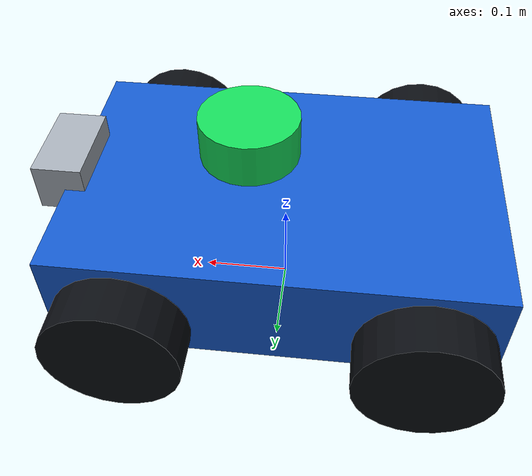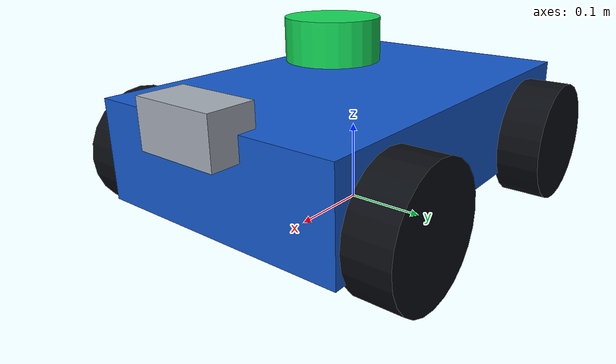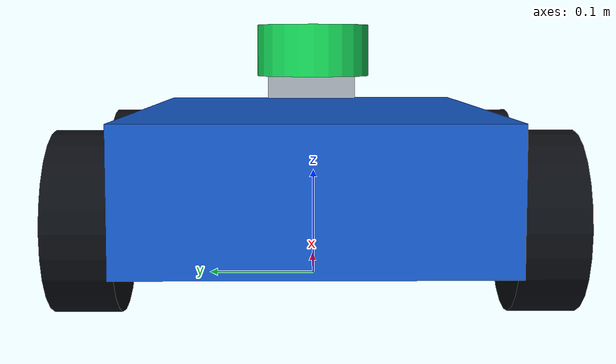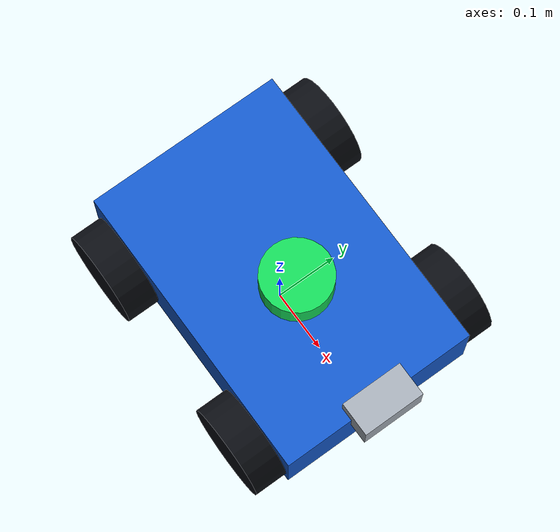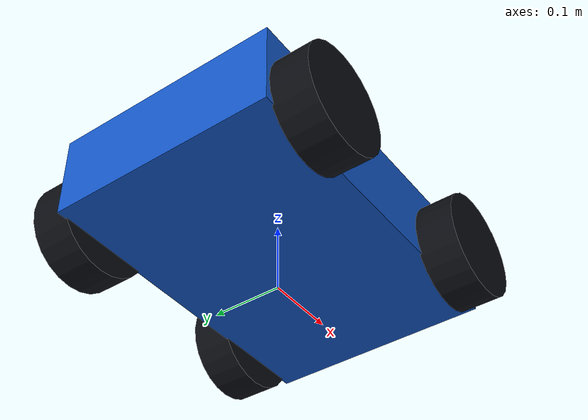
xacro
<?xml version="1.0"?>
<robot name="show_car" xmlns:xacro="http://www.ros.org/wiki/xacro">
  <xacro:property name="pi" value="3.141592653589793"/>

  <material name="body_blue"><color rgba="0.08 0.35 0.80 1"/></material>
  <material name="dark"><color rgba="0.04 0.05 0.07 1"/></material>
  <material name="metal"><color rgba="0.65 0.68 0.72 1"/></material>
  <material name="sensor"><color rgba="0.08 0.85 0.35 1"/></material>

  <!-- base_footprint 位於地面，作為 RViz 的固定座標框架。 -->
  <link name="base_footprint"/>

  <!-- 車身主體。 -->
  <link name="base_link">
    <visual>
      <origin xyz="0 0 0.10"/>
      <geometry><box size="0.48 0.32 0.12"/></geometry>
      <material name="body_blue"/>
    </visual>
    <collision>
      <origin xyz="0 0 0.10"/>
      <geometry><box size="0.48 0.32 0.12"/></geometry>
    </collision>
    <inertial>
      <origin xyz="0 0 0.10"/>
      <mass value="8.0"/>
      <inertia ixx="0.0789" ixy="0" ixz="0" iyy="0.1728" iyz="0" izz="0.2229"/>
    </inertial>
  </link>
  <joint name="base_joint" type="fixed">
    <parent link="base_footprint"/>
    <child link="base_link"/>
  </joint>

  <!-- 四個車輪共用的 Xacro 巨集，x、y 代表車輪相對車身的位置。 -->
  <xacro:macro name="wheel" params="name x y">
    <link name="${name}">
      <visual>
        <origin rpy="${pi/2} 0 0"/>
        <geometry><cylinder radius="0.075" length="0.055"/></geometry>
        <material name="dark"/>
      </visual>
      <collision>
        <origin rpy="${pi/2} 0 0"/>
        <geometry><cylinder radius="0.075" length="0.055"/></geometry>
      </collision>
      <inertial>
        <mass value="0.5"/>
        <inertia ixx="0.00156" ixy="0" ixz="0" iyy="0.00156" iyz="0" izz="0.00281"/>
      </inertial>
    </link>
    <joint name="${name}_joint" type="continuous">
      <parent link="base_link"/>
      <child link="${name}"/>
      <origin xyz="${x} ${y} 0.075"/>
      <axis xyz="0 1 0"/>
    </joint>
  </xacro:macro>
  <xacro:wheel name="front_left_wheel"  x="0.16"  y="0.185"/>
  <xacro:wheel name="front_right_wheel" x="0.16"  y="-0.185"/>
  <xacro:wheel name="rear_left_wheel"   x="-0.16" y="0.185"/>
  <xacro:wheel name="rear_right_wheel"  x="-0.16" y="-0.185"/>

  <!-- 雷射測距儀；掃描資料使用 laser_link 作為 frame_id。 -->
  <link name="laser_link">
    <visual>
      <origin xyz="0 0 0.025"/>
      <geometry><cylinder radius="0.055" length="0.05"/></geometry>
      <material name="sensor"/>
    </visual>
  </link>
  <joint name="laser_joint" type="fixed">
    <parent link="base_link"/>
    <child link="laser_link"/>
    <origin xyz="0.04 0 0.19"/>
  </joint>

  <!-- 相機本體安裝於車身前方。 -->
  <link name="camera_link">
    <visual>
      <geometry><box size="0.055 0.10 0.055"/></geometry>
      <material name="metal"/>
    </visual>
  </link>
  <joint name="camera_joint" type="fixed">
    <parent link="base_link"/>
    <child link="camera_link"/>
    <origin xyz="0.245 0 0.16"/>
  </joint>

  <!--
    相機光學座標框架遵循 ROS REP-103：
    Z 軸朝鏡頭前方、X 軸向右、Y 軸向下。
  -->
  <link name="camera_optical_frame"/>
  <joint name="camera_optical_joint" type="fixed">
    <parent link="camera_link"/>
    <child link="camera_optical_frame"/>
    <origin rpy="-1.5707963 0 -1.5707963"/>
  </joint>
</robot>
